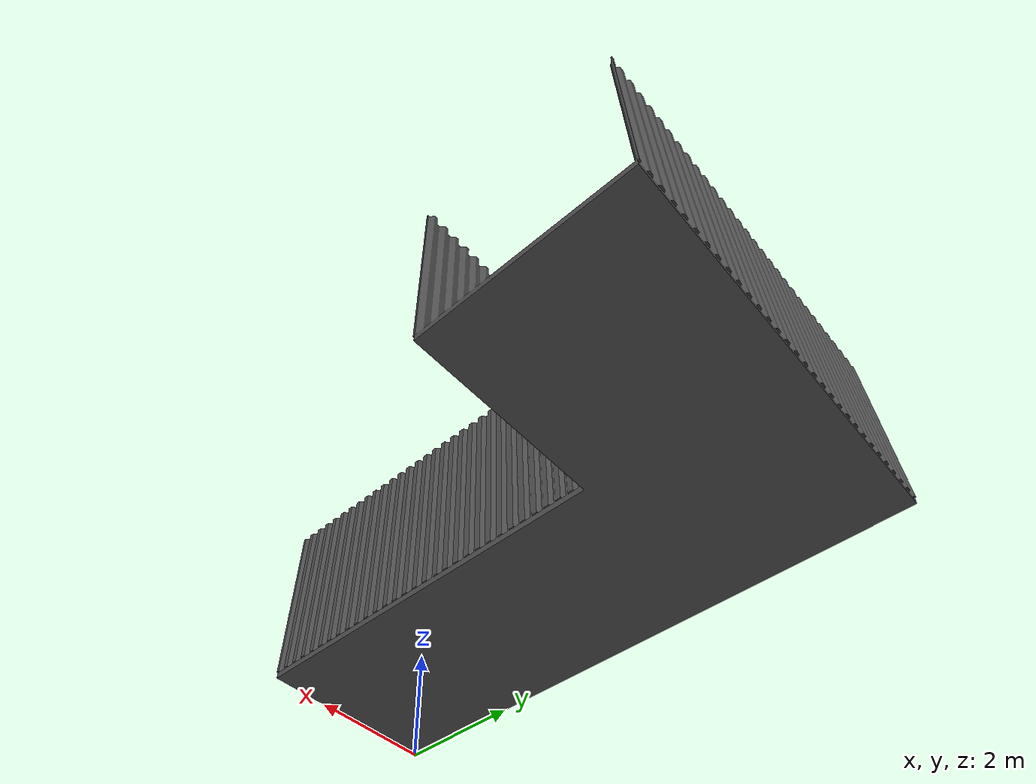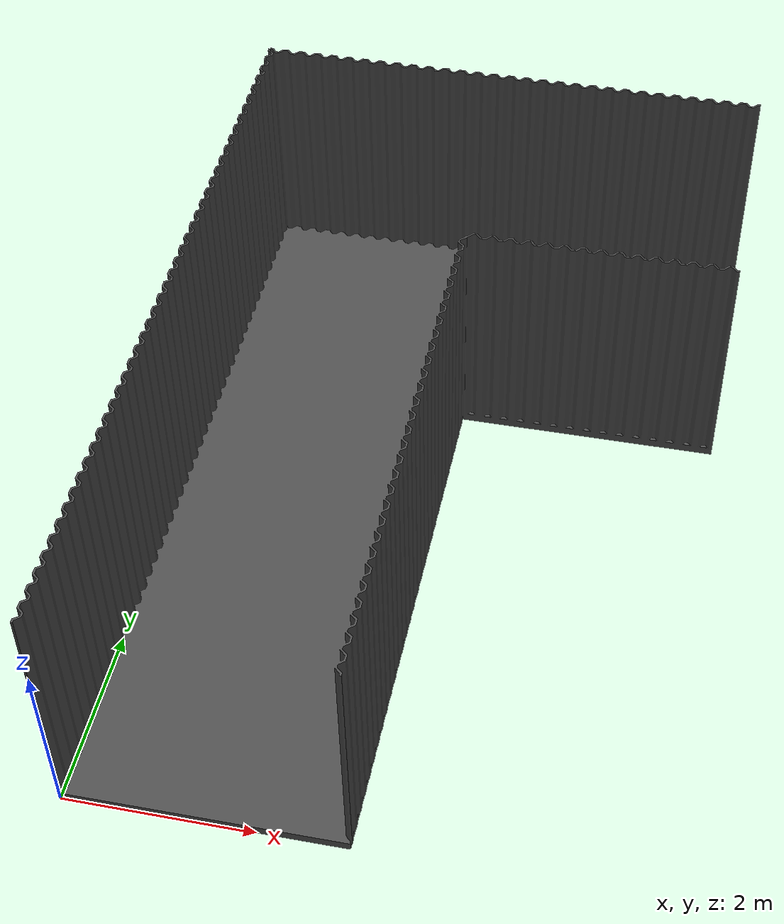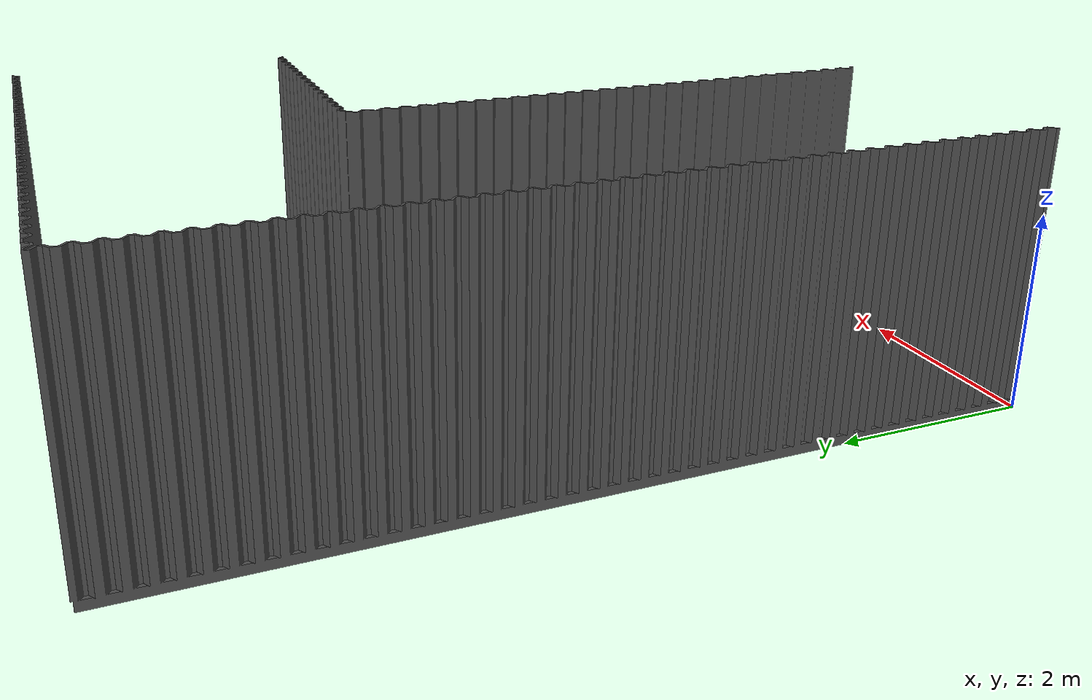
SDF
<?xml version="1.0" ?>
<sdf version="1.5">
  <model name="AIGC2_tunnel_2">
    <static>true</static>
	<link name='chassis1'>
		<collision name='collision1'>
			<geometry>
				<mesh>
				<scale>0.098 0.098 0.098</scale>
				<uri>model://AIGC2_tunnel_2/aigc_tunnel.stl</uri></mesh>
			</geometry>
		</collision>

		<visual name='visual1'>
			<geometry>
				<mesh>
				<scale>0.098 0.098 0.098</scale>
				<uri>model://AIGC2_tunnel_2/aigc_tunnel.stl</uri></mesh>
			</geometry>
		    <material>
		      <script>
		        <name>Gazebo/DarkGrey</name>
		        <uri>file://media/materials/scripts/gazebo.material</uri>
		      </script>
		    </material>
		</visual>
	</link>
  </model>
</sdf>
